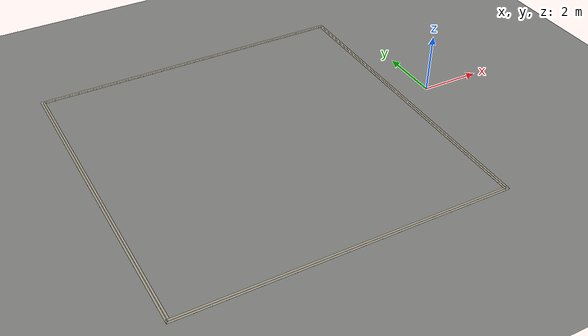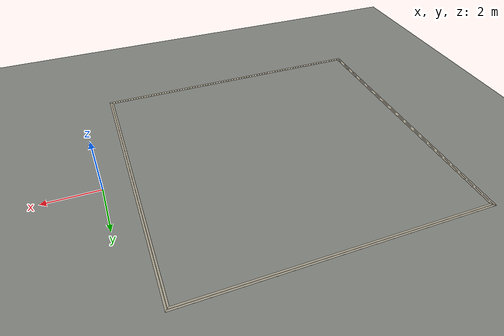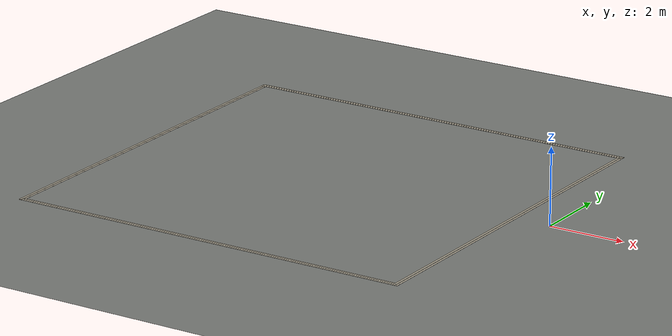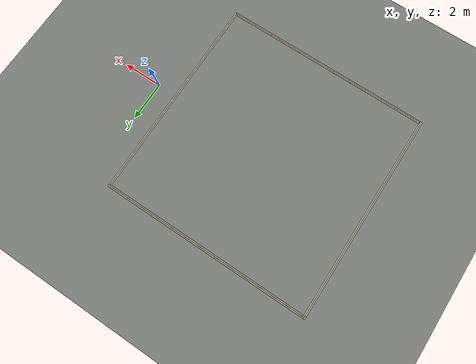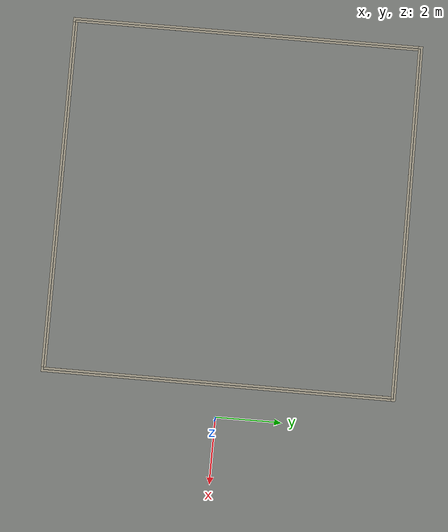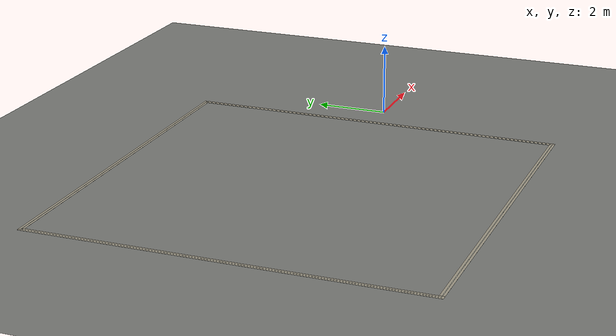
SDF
<sdf version="1.6">
 <world name="classroom_floor_world">
  <model name="ground_plane">
   <static>true</static>
   <link name="link">
    <collision name="collision">
     <geometry><plane><normal>0 0 1</normal><size>100 100</size></plane></geometry>
     <surface>
      <contact><collide_bitmask>0xffff</collide_bitmask></contact>
      <friction><ode><mu>0.63</mu><mu2>0.63</mu2></ode></friction>
     </surface>
    </collision>
    <visual name="visual">
     <cast_shadows>false</cast_shadows>
     <geometry><plane><normal>0 0 1</normal><size>100 100</size></plane></geometry>
     <material>
      <ambient>0.470 0.478 0.462 1</ambient>
      <diffuse>0.470 0.478 0.462 1</diffuse>
      <specular>0 0 0 1</specular>
     </material>
    </visual>
   </link>
  </model>
  <model name="indoor_court">
   <static>true</static>
   <link name="court_link">
    <visual name="yarn_baseline">
     <pose>-11.6850 0.0000 0.0007 0 0 0</pose>
     <cast_shadows>false</cast_shadows>
     <geometry><box><size>0.0140 10.5840 0.0010</size></box></geometry>
     <material>
      <ambient>0.845 0.848 0.784 1</ambient>
      <diffuse>0.845 0.848 0.784 1</diffuse>
      <specular>0 0 0 1</specular>
     </material>
    </visual>
    <visual name="yarn_halo_baseline">
     <pose>-11.6850 0.0000 0.0005 0 0 0</pose>
     <cast_shadows>false</cast_shadows>
     <geometry><box><size>0.1400 10.7100 0.0010</size></box></geometry>
     <material>
      <ambient>0.627 0.600 0.531 1</ambient>
      <diffuse>0.627 0.600 0.531 1</diffuse>
      <specular>0 0 0 1</specular>
     </material>
    </visual>
    <visual name="yarn_left">
     <pose>-6.3425 5.2850 0.0007 0 0 0</pose>
     <cast_shadows>false</cast_shadows>
     <geometry><box><size>10.6990 0.0140 0.0010</size></box></geometry>
     <material>
      <ambient>0.845 0.848 0.784 1</ambient>
      <diffuse>0.845 0.848 0.784 1</diffuse>
      <specular>0 0 0 1</specular>
     </material>
    </visual>
    <visual name="yarn_halo_left">
     <pose>-6.3425 5.2850 0.0005 0 0 0</pose>
     <cast_shadows>false</cast_shadows>
     <geometry><box><size>10.8250 0.1400 0.0010</size></box></geometry>
     <material>
      <ambient>0.627 0.600 0.531 1</ambient>
      <diffuse>0.627 0.600 0.531 1</diffuse>
      <specular>0 0 0 1</specular>
     </material>
    </visual>
    <visual name="yarn_right">
     <pose>-6.3425 -5.2850 0.0007 0 0 0</pose>
     <cast_shadows>false</cast_shadows>
     <geometry><box><size>10.6990 0.0140 0.0010</size></box></geometry>
     <material>
      <ambient>0.845 0.848 0.784 1</ambient>
      <diffuse>0.845 0.848 0.784 1</diffuse>
      <specular>0 0 0 1</specular>
     </material>
    </visual>
    <visual name="yarn_halo_right">
     <pose>-6.3425 -5.2850 0.0005 0 0 0</pose>
     <cast_shadows>false</cast_shadows>
     <geometry><box><size>10.8250 0.1400 0.0010</size></box></geometry>
     <material>
      <ambient>0.627 0.600 0.531 1</ambient>
      <diffuse>0.627 0.600 0.531 1</diffuse>
      <specular>0 0 0 1</specular>
     </material>
    </visual>
    <visual name="yarn_net">
     <pose>-1.0000 0.0000 0.0007 0 0 0</pose>
     <cast_shadows>false</cast_shadows>
     <geometry><box><size>0.0140 10.5840 0.0010</size></box></geometry>
     <material>
      <ambient>0.845 0.848 0.784 1</ambient>
      <diffuse>0.845 0.848 0.784 1</diffuse>
      <specular>0 0 0 1</specular>
     </material>
    </visual>
    <visual name="yarn_halo_net">
     <pose>-1.0000 0.0000 0.0005 0 0 0</pose>
     <cast_shadows>false</cast_shadows>
     <geometry><box><size>0.1400 10.7100 0.0010</size></box></geometry>
     <material>
      <ambient>0.627 0.600 0.531 1</ambient>
      <diffuse>0.627 0.600 0.531 1</diffuse>
      <specular>0 0 0 1</specular>
     </material>
    </visual>
   </link>
  </model>
 </world>
</sdf>
